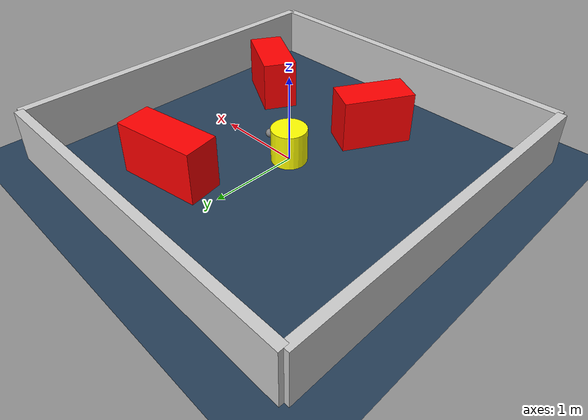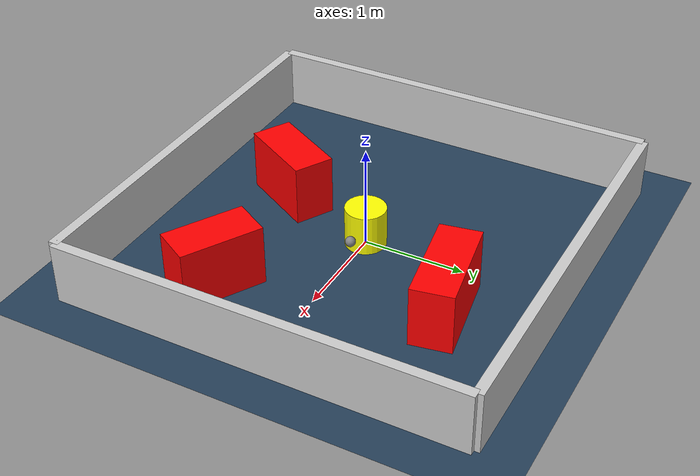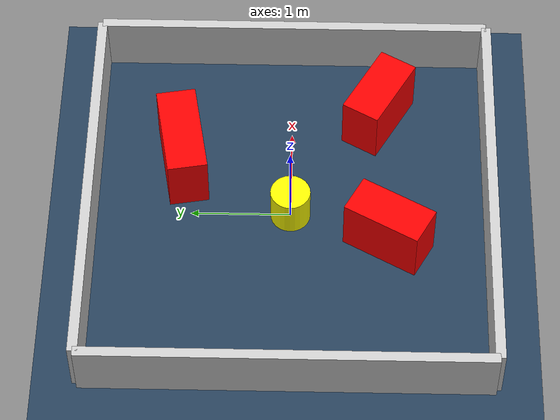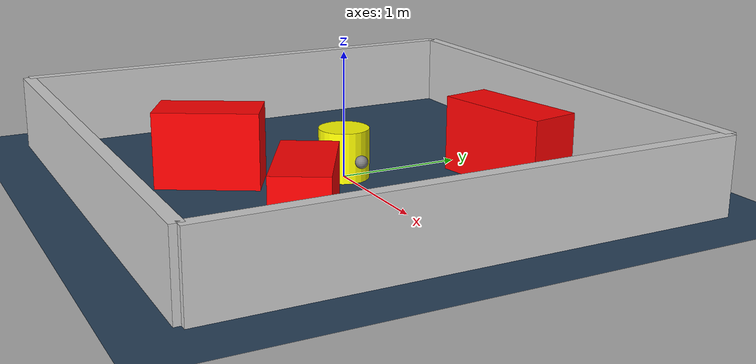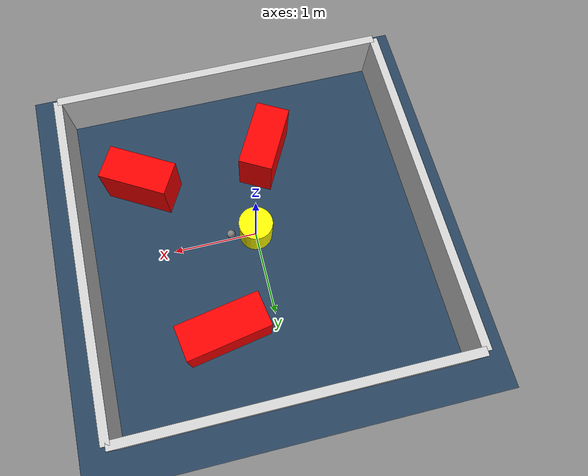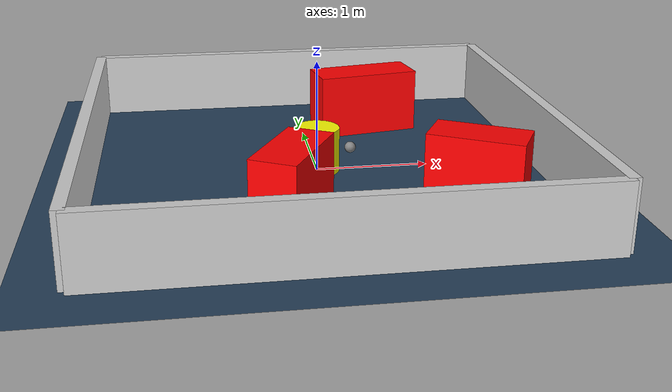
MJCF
<?xml version="1.0" ?>
<mujoco model="generated_environment">
  <option timestep="0.01" integrator="RK4" cone="elliptic"/>
  <default>
    <geom density="1"/>
  </default>
  <asset>
    <texture builtin="gradient" height="3072" rgb1="0.3 0.5 0.7" rgb2="0 0 0" type="skybox" width="512"/>
    <texture builtin="checker" height="300" mark="edge" markrgb="0.8 0.8 0.8" name="groundplane" rgb1="0.2 0.3 0.4" rgb2="0.1 0.2 0.3" type="2d" width="300"/>
    <material name="groundplane" reflectance="0.2" texrepeat="5 5" texture="groundplane" texuniform="true"/>
    <material name="robot" rgba="0.0 1.0 0.0 1"/>
  </asset>
  <worldbody>
    <light dir="0 0 -1" directional="true" pos="0 0 1.5"/>
    <geom condim="4" friction="1.0 0.005 0.001" material="groundplane" name="floor" size="0 0 0.05" type="plane"/>
    <body name="walls">
      <geom name="wall_1" condim="4" pos="-2.0 0.0 0.3" rgba="0.800000011920929 0.800000011920929 0.800000011920929 1.0" size="0.05 2.0 0.3" type="box"/>
      <geom name="wall_2" condim="4" pos="2.0 0.0 0.3" rgba="0.800000011920929 0.800000011920929 0.800000011920929 1.0" size="0.05 2.0 0.3" type="box"/>
      <geom name="wall_3" condim="4" pos="0.0 -2.0 0.3" rgba="0.800000011920929 0.800000011920929 0.800000011920929 1.0" size="2.0 0.05 0.3" type="box"/>
      <geom name="wall_4" condim="4" pos="0.0 2.0 0.3" rgba="0.800000011920929 0.800000011920929 0.800000011920929 1.0" size="2.0 0.05 0.3" type="box"/>
    </body>
    <body name="robot">
      <joint name="joint_x" type="slide" pos="0 0 0" axis="1 0 0"/>
      <joint name="joint_y" type="slide" pos="0 0 0" axis="0 1 0"/>
      <geom name="robot" type="sphere" pos="0.3 0.0 0.2" size="0.05" mass="5." friction="1.0 0.005 0.0001" condim="4" rgba="0.5 0.5 0.5 1.0"/>
      <site name="sensor_ball"/>
    </body>
    <body name="obstacle_movable_1">
      <geom name="obstacle_movable_1" condim="4" pos="0.0 0.0 0.2" euler="0 0 0.0" friction="1.0 0.005 0.001" rgba="1.0 1.0 0.0 1.0" size="0.2 0.2 0.0" type="cylinder" mass="0.1"/>
      <joint type="free"/>
    </body>
    <body name="obstacle_2_static">
      <geom name="obstacle_2_static" condim="4" pos="1.208229256778535 -0.8868043224573674 0.3" euler="0 0 330.43500808436283" friction="1.0 0.005 0.001" rgba="1 0 0 1" size="0.4023517520931837 0.2 0.3" type="box"/>
    </body>
    <body name="obstacle_3_static">
      <geom name="obstacle_3_static" condim="4" pos="0.6186158439859581 1.1083147649741514 0.3" euler="0 0 9.911503010749914" friction="1.0 0.005 0.001" rgba="1 0 0 1" size="0.4853765479306055 0.2 0.3" type="box"/>
    </body>
    <body name="obstacle_4_static">
      <geom name="obstacle_4_static" condim="4" pos="-0.3345448989253508 -0.9827518043872225 0.3" euler="0 0 241.08668319295782" friction="1.0 0.005 0.001" rgba="1 0 0 1" size="0.40566807280352996 0.2 0.3" type="box"/>
    </body>
  </worldbody>
  <actuator>
    <motor name="actuator_x" joint="joint_x" gear="1" ctrlrange="-1 1"/>
    <motor name="actuator_y" joint="joint_y" gear="1" ctrlrange="-1 1"/>
  </actuator>
</mujoco>
